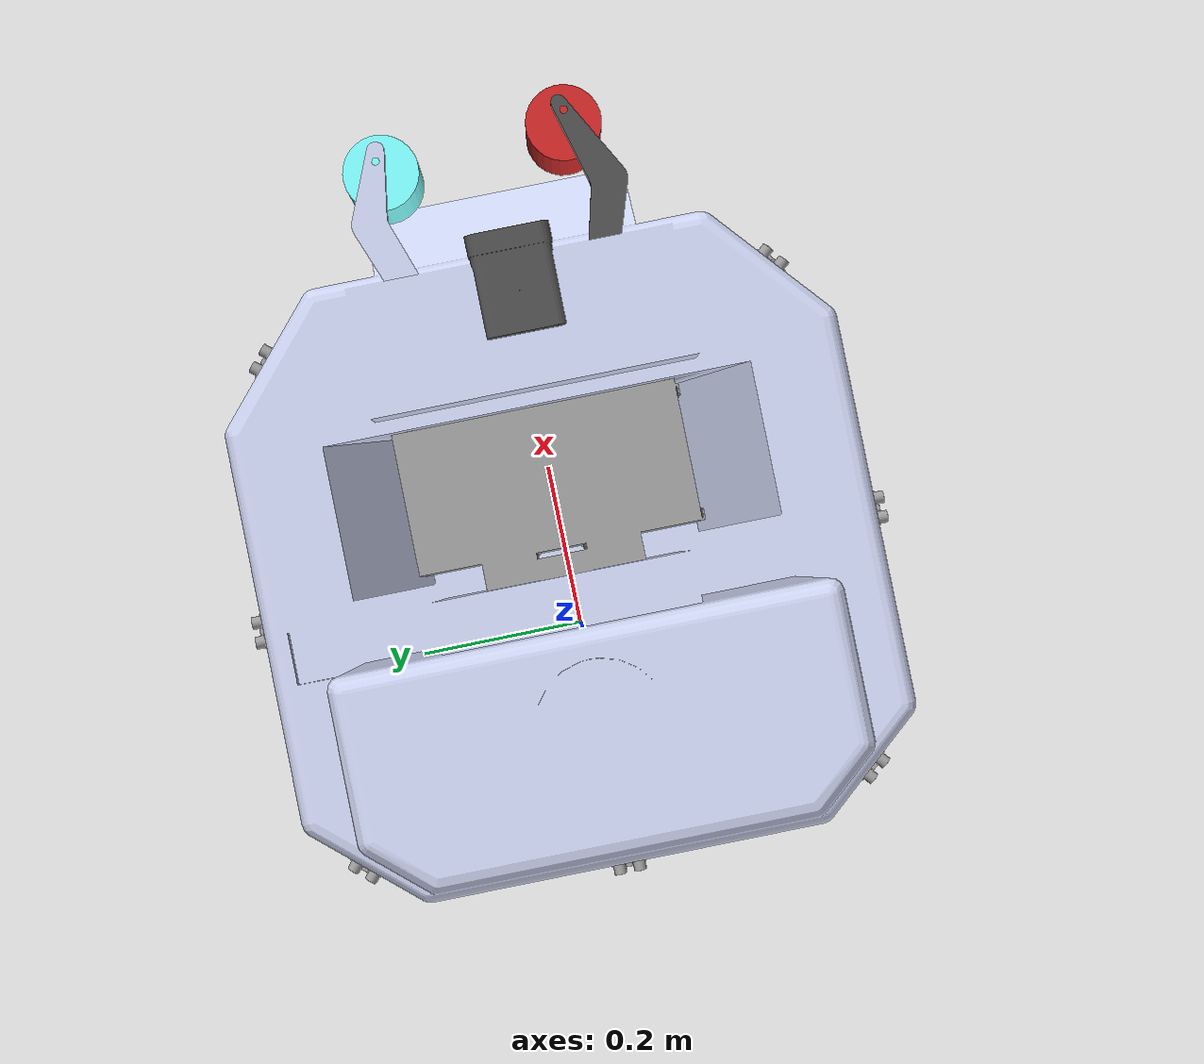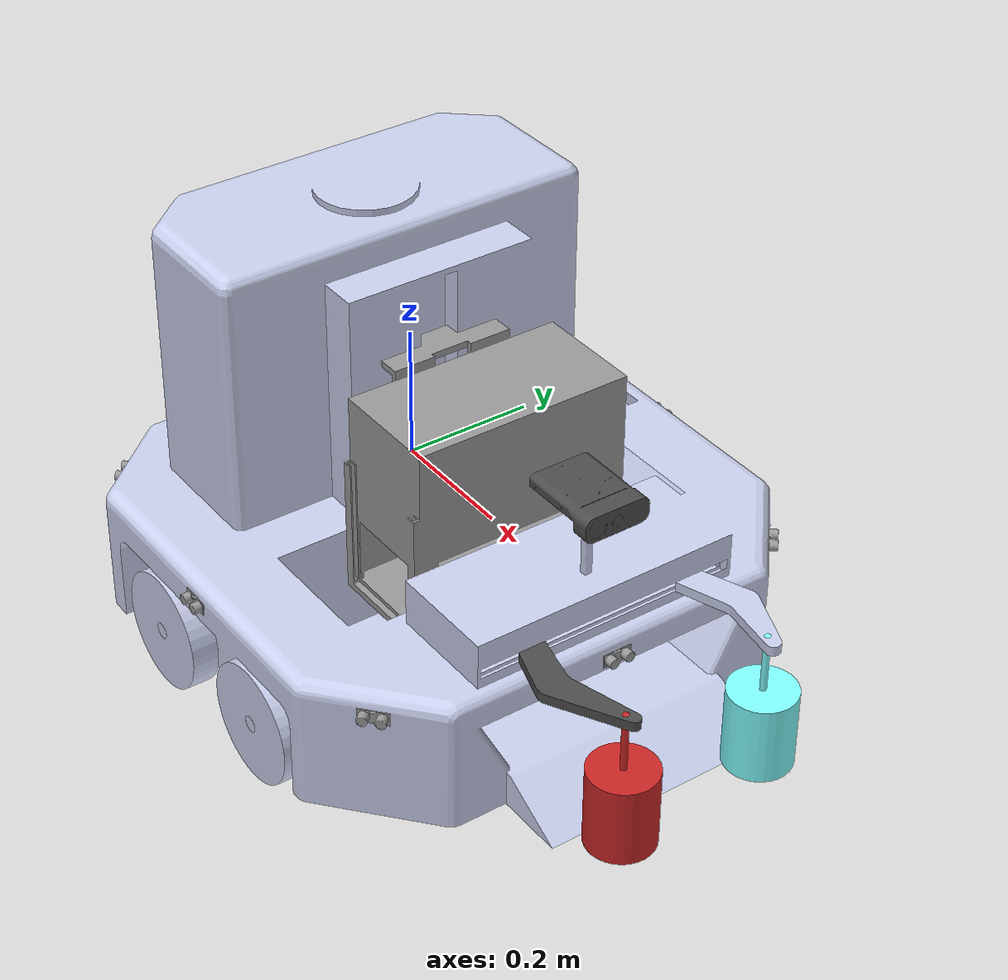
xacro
<?xml version="1.0"?>

<robot name="bot" xmlns:xacro="http://www.ros.org/wiki/xacro">
  <xacro:property name="M_PI" value="3.1415926535897931" />

  <!-- Included URDF Files -->
  <xacro:include filename="$(find washroom_cleaner)/urdf/bot_base.urdf.xacro" />

  <!-- Instantiate quadrotor_base_macro once (has no parameters atm) -->
  <xacro:bot_base/>

  <!-- Forward facing camera -->
  <xacro:include filename="$(find washroom_cleaner)/urdf/kinect.urdf.xacro" />
  <xacro:kinect name="kinect" parent="base_link" frame_name="base_link" update_rate="10" res_x="320" res_y="240" image_format="R8G8B8" hfov="90">
    <origin xyz="0.45675 -0.0051142 0.16966" rpy="0 0 0"/>
  </xacro:kinect>

  <!-- Lidar -->
  <xacro:include filename="$(find washroom_cleaner)/urdf/distance_sensor.urdf.xacro" />
  <xacro:distance_sensor name="dist_N" parent="base_link" ros_topic="scan" frame_name="base_link" update_rate="40" ray_count="10" min_angle="-2.5" max_angle="2.5" min_range="0.05" max_range="5" noise="true">
    <origin xyz="0.067877 0.39974 -0.05186" rpy="${M_PI} 0 ${M_PI/2}"/>
  </xacro:distance_sensor>

  <xacro:distance_sensor name="dist_NW" parent="base_link" ros_topic="scan" frame_name="base_link" update_rate="40" ray_count="10" min_angle="-2.5" max_angle="2.5" min_range="0.05" max_range="5" noise="true">
    <origin xyz="0.40623 0.33093 -0.05186" rpy="${M_PI} 0 ${2.4267 - M_PI/2}"/>
  </xacro:distance_sensor>

  <xacro:distance_sensor name="dist_W" parent="base_link" ros_topic="scan" frame_name="base_link" update_rate="40" ray_count="10" min_angle="-2.5" max_angle="2.5" min_range="0.05" max_range="5" noise="true">
    <origin xyz="0.48675 -0.00026 -0.05186" rpy="${M_PI} 0 0"/>
  </xacro:distance_sensor>

  <xacro:distance_sensor name="dist_SW" parent="base_link" ros_topic="scan" frame_name="base_link" update_rate="40" ray_count="10" min_angle="-2.5" max_angle="2.5" min_range="0.05" max_range="5" noise="true">
    <origin xyz="-0.253597943806856 0.329767311841684 -0.05186" rpy="${M_PI} 0 ${-2.28564794445059 - M_PI/2}"/>
  </xacro:distance_sensor>

  <xacro:distance_sensor name="dist_S" parent="base_link" ros_topic="scan" frame_name="base_link" update_rate="40" ray_count="10" min_angle="-2.5" max_angle="2.5" min_range="0.05" max_range="5" noise="true">
    <origin xyz="-0.31325 -0.00026 -0.05186" rpy="${M_PI} 0 ${M_PI}"/>
  </xacro:distance_sensor>

  <xacro:distance_sensor name="dist_SE" parent="base_link" ros_topic="scan" frame_name="base_link" update_rate="40" ray_count="10" min_angle="-2.5" max_angle="2.5" min_range="0.05" max_range="5" noise="true">
    <origin xyz="-0.253597943806856 -0.330287311841684 -0.05186" rpy="${M_PI} 0 ${-0.855944709139206 - M_PI/2}"/>
  </xacro:distance_sensor>

  <xacro:distance_sensor name="dist_E" parent="base_link" ros_topic="scan" frame_name="base_link" update_rate="40" ray_count="10" min_angle="-2.5" max_angle="2.5" min_range="0.05" max_range="5" noise="true">
    <origin xyz="0.0678770423730095 -0.40026 -0.05186" rpy="${M_PI} 0 ${-M_PI/2}"/>
  </xacro:distance_sensor>

  <xacro:distance_sensor name="dist_NE" parent="base_link" ros_topic="scan" frame_name="base_link" update_rate="40" ray_count="10" min_angle="-2.5" max_angle="2.5" min_range="0.05" max_range="5" noise="true">
    <origin xyz="0.40623 -0.33145 -0.05186" rpy="${M_PI} 0 ${0.71485 - M_PI/2}"/>
  </xacro:distance_sensor>

</robot>

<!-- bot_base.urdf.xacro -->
<robot name="bot" xmlns:xacro="http://www.ros.org/wiki/xacro">

  <xacro:property name="pi" value="3.1415926535897931" />

  <!-- Main link -->
  <xacro:macro name="bot_base">
    <gazebo reference="base_link">
      <material>Gazebo/LightGray</material>
    </gazebo>
    <gazebo reference="left_front_wheel">
      <material>Gazebo/DarkGray</material>
    </gazebo>
    <gazebo reference="left_rear_wheel">
      <material>Gazebo/DarkGray</material>
    </gazebo>
    <gazebo reference="right_front_wheel">
      <material>Gazebo/DarkGray</material>
    </gazebo>
    <gazebo reference="right_rear_wheel">
      <material>Gazebo/DarkGray</material>
    </gazebo>
    <gazebo reference="brush">
      <material>Gazebo/DarkGray</material>
    </gazebo>
    <gazebo reference="dustbin">
      <material>Gazebo/Gray</material>
    </gazebo>
    <gazebo reference="claw_left">
      <material>Gazebo/DarkGray</material>
    </gazebo>
    <gazebo reference="claw_right">
      <material>Gazebo/DarkGray</material>
    </gazebo>
    <gazebo reference="drum_left">
      <material>Gazebo/Red</material>
    </gazebo>
    <gazebo reference="drum_right">
      <material>Gazebo/Red</material>
    </gazebo>

    <link name="base_link">
      <inertial>
        <origin
          xyz="-0.014481 -0.00042641 0.0075303"
          rpy="0 0 0" />
        <mass
          value="50" />
        <inertia
          ixx="7.1653"
          ixy="-0.0082541"
          ixz="0.15785"
          iyy="6.184"
          iyz="-0.0017661"
          izz="11.053" />
      </inertial>
      <visual>
        <origin
          xyz="0 0 0"
          rpy="0 0 0" />
        <geometry>
          <mesh
            filename="package://washroom_cleaner/meshes/base_link_bot.STL" />
        </geometry>
        <material
          name="">
          <color
            rgba="0.79216 0.81961 0.93333 1" />
        </material>
      </visual>
      <collision>
        <origin
          xyz="0 0 0"
          rpy="0 0 0" />
        <geometry>
          <mesh
            filename="package://washroom_cleaner/meshes/base_link_bot.STL" />
        </geometry>
      </collision>
    </link>
    <link name="left_front_wheel">
      <inertial>
        <origin
          xyz="0.02 -6.9389E-18 -2.7756E-17"
          rpy="0 0 0" />
        <mass
          value="0.99824" />
        <inertia
          ixx="0.0041209"
          ixy="2.5714E-36"
          ixz="-1.1888E-35"
          iyy="0.0021935"
          iyz="2.8905E-36"
          izz="0.0021935" />
      </inertial>
      <visual>
        <origin
          xyz="0 0 0"
          rpy="0 0 0" />
        <geometry>
          <mesh
            filename="package://washroom_cleaner/meshes/left_front_wheel_bot.STL" />
        </geometry>
        <material
          name="">
          <color
            rgba="0.79216 0.81961 0.93333 1" />
        </material>
      </visual>
      <collision>
        <origin
          xyz="0 0 0"
          rpy="0 0 0" />
        <geometry>
          <mesh
            filename="package://washroom_cleaner/meshes/left_front_wheel_bot.STL" />
        </geometry>
      </collision>
    </link>
    <joint name="left_front_wheel_joint" type="continuous">
      <origin
        xyz="0.19104 0.35474 -0.18656"
        rpy="1.5708 0 1.5708" />
      <parent
        link="base_link" />
      <child
        link="left_front_wheel" />
      <axis
        xyz="1 0 0" />
    </joint>
    <link name="left_rear_wheel">
      <inertial>
        <origin
          xyz="0.02 6.9389E-18 2.7756E-17"
          rpy="0 0 0" />
        <mass
          value="0.99824" />
        <inertia
          ixx="0.0041209"
          ixy="-1.1388E-35"
          ixz="-1.1888E-35"
          iyy="0.0021935"
          iyz="-2.8671E-36"
          izz="0.0021935" />
      </inertial>
      <visual>
        <origin
          xyz="0 0 0"
          rpy="0 0 0" />
        <geometry>
          <mesh
            filename="package://washroom_cleaner/meshes/left_rear_wheel_bot.STL" />
        </geometry>
        <material
          name="">
          <color
            rgba="0.79216 0.81961 0.93333 1" />
        </material>
      </visual>
      <collision>
        <origin
          xyz="0 0 0"
          rpy="0 0 0" />
        <geometry>
          <mesh
            filename="package://washroom_cleaner/meshes/left_rear_wheel_bot.STL" />
        </geometry>
      </collision>
    </link>
    <joint name="left_rear_wheel_joint" type="continuous">
      <origin
        xyz="-0.053956 0.35474 -0.18656"
        rpy="1.5708 0 1.5708" />
      <parent
        link="base_link" />
      <child
        link="left_rear_wheel" />
      <axis
        xyz="1 0 0" />
    </joint>
    <link name="right_rear_wheel">
      <inertial>
        <origin
          xyz="-0.02 2.0817E-17 1.3878E-16"
          rpy="0 0 0" />
        <mass
          value="0.99824" />
        <inertia
          ixx="0.0041209"
          ixy="2.3082E-21"
          ixz="-3.6632E-20"
          iyy="0.0021935"
          iyz="-2.7105E-20"
          izz="0.0021935" />
      </inertial>
      <visual>
        <origin
          xyz="0 0 0"
          rpy="0 0 0" />
        <geometry>
          <mesh
            filename="package://washroom_cleaner/meshes/right_rear_wheel_bot.STL" />
        </geometry>
        <material
          name="">
          <color
            rgba="0.79216 0.81961 0.93333 1" />
        </material>
      </visual>
      <collision>
        <origin
          xyz="0 0 0"
          rpy="0 0 0" />
        <geometry>
          <mesh
            filename="package://washroom_cleaner/meshes/right_rear_wheel_bot.STL" />
        </geometry>
      </collision>
    </link>
    <joint name="right_rear_wheel_joint" type="continuous">
      <origin
        xyz="-0.053956 -0.35526 -0.18656"
        rpy="1.5059 0 1.5708" />
      <parent
        link="base_link" />
      <child
        link="right_rear_wheel" />
      <axis
        xyz="1 0 0" />
    </joint>
    <link name="right_front_wheel">
      <inertial>
        <origin
          xyz="-0.02 3.4694E-17 2.498E-16"
          rpy="0 0 0" />
        <mass
          value="0.99824" />
        <inertia
          ixx="0.0041209"
          ixy="-8.3515E-23"
          ixz="1.2599E-21"
          iyy="0.0021935"
          iyz="-1.6263E-19"
          izz="0.0021935" />
      </inertial>
      <visual>
        <origin
          xyz="0 0 0"
          rpy="0 0 0" />
        <geometry>
          <mesh
            filename="package://washroom_cleaner/meshes/right_front_wheel_bot.STL" />
        </geometry>
        <material
          name="">
          <color
            rgba="0.79216 0.81961 0.93333 1" />
        </material>
      </visual>
      <collision>
        <origin
          xyz="0 0 0"
          rpy="0 0 0" />
        <geometry>
          <mesh
            filename="package://washroom_cleaner/meshes/right_front_wheel_bot.STL" />
        </geometry>
      </collision>
    </link>
    <joint name="right_front_wheel_joint" type="continuous">
      <origin
        xyz="0.19104 -0.35526 -0.18656"
        rpy="1.041 0 1.5708" />
      <parent
        link="base_link" />
      <child
        link="right_front_wheel" />
      <axis
        xyz="1 0 0" />
    </joint>
    <link name="brush">
      <inertial>
        <origin
          xyz="2.7756E-17 -0.025 0"
          rpy="0 0 0" />
        <mass
          value="1.4726" />
        <inertia
          ixx="0.0042184"
          ixy="-8.0631E-36"
          ixz="-2.3434E-37"
          iyy="0.0078233"
          iyz="-1.7072E-35"
          izz="0.0042184" />
      </inertial>
      <visual>
        <origin
          xyz="0 0 0"
          rpy="0 0 0" />
        <geometry>
          <mesh
            filename="package://washroom_cleaner/meshes/brush_bot.STL" />
        </geometry>
        <material
          name="">
          <color
            rgba="0.79216 0.81961 0.93333 1" />
        </material>
      </visual>
      <collision>
        <origin
          xyz="0 0 0"
          rpy="0 0 0" />
        <geometry>
          <mesh
            filename="package://washroom_cleaner/meshes/brush_bot.STL" />
        </geometry>
      </collision>
    </link>
    <joint name="brush_joint" type="continuous">
      <origin
        xyz="-0.075411 0.0095022 -0.20156"
        rpy="1.5708 0 1.5708" />
      <parent
        link="base_link" />
      <child
        link="brush" />
      <axis
        xyz="0 1 0" />
    </joint>

    <link name="dustbin">
      <inertial>
        <origin xyz="0.00043559 0.046483 -0.014187" rpy="0 0 0" />
        <mass value="3.3913" />
        <inertia ixx="0.050849" ixy="0.0007766" ixz="3.7083E-06" iyy="0.053672" iyz="0.0030717" izz="0.078293" />
      </inertial>
      <visual>
        <origin xyz="0 0 0" rpy="0 0 0" />
        <geometry>
          <mesh filename="package://washroom_cleaner/meshes/dustbin_bot.STL" />
        </geometry>
      </visual>
      <collision>
        <origin xyz="0 0 0" rpy="0 0 0" />
        <geometry>
          <mesh filename="package://washroom_cleaner/meshes/dustbin_bot.STL" />
        </geometry>
      </collision>
    </link>
    <joint name="dustbin_joint" type="prismatic">
      <origin xyz="0.18105 0.0059196 0" rpy="1.5708 0 1.5708" />
      <parent link="base_link" />
      <child link="dustbin" />
      <axis xyz="0 1 0" />
      <limit lower="0" upper="0.1" effort="0.01" velocity="0.1" />
    </joint>

    <link name="claw_right">
      <inertial>
        <origin xyz="-0.039152 0.0075 0.084902" rpy="0 0 0" />
        <mass value="0.11123" />
        <inertia ixx="0.00028997" ixy="-7.7846E-22" ixz="-3.8528E-05" iyy="0.00031833" iyz="-4.6594E-22" izz="3.2529E-05" />
      </inertial>
      <visual>
        <origin xyz="0 0 0" rpy="0 0 0" />
        <geometry>
          <mesh filename="package://washroom_cleaner/meshes/claw_right_bot.STL" />
        </geometry>
      </visual>
      <collision>
        <origin xyz="0 0 0" rpy="0 0 0" />
        <geometry>
          <mesh filename="package://washroom_cleaner/meshes/claw_right_bot.STL" />
        </geometry>
      </collision>
    </link>
    <joint name="claw_right_joint" type="fixed">
      <origin xyz="0.46675 -0.092741 -0.00656" rpy="1.5708 0 1.5708" />
      <parent link="base_link" />
      <child link="claw_right" />
      <axis xyz="1 0 0" />
      <limit lower="0" upper="0.05" effort="0.1" velocity="0.1" />
    </joint>

    <link name="drum_right">
      <inertial>
        <origin xyz="1.1102E-16 -0.13422 -1.1102E-16" rpy="0 0 0" />
        <mass value="0.94943" />
        <inertia ixx="0.0018019" ixy="5.5041E-20" ixz="0" iyy="0.0011779" iyz="1.3414E-19" izz="0.0018019" />
      </inertial>
      <visual>
        <origin xyz="0 0 0" rpy="0 0 0" />
        <geometry>
          <mesh filename="package://washroom_cleaner/meshes/drum_right_bot.STL" />
        </geometry>
      </visual>
      <collision>
        <origin xyz="0 0 0" rpy="0 0 0" />
        <geometry>
          <mesh filename="package://washroom_cleaner/meshes/drum_right_bot.STL" />
        </geometry>
      </collision>
    </link>
    <joint name="drum_right_joint" type="continuous">
      <origin xyz="-0.014509 0 0.17408" rpy="3.1416 -0.70288 3.1416" />
      <parent link="claw_right" />
      <child link="drum_right" />
      <axis xyz="0 1 0" />
    </joint>

    <link name="claw_left">
      <inertial>
        <origin
          xyz="0.038257 0.0075 0.079083"
          rpy="0 0 0" />
        <mass
          value="0.10469" />
        <inertia
          ixx="0.00024535"
          ixy="9.5759E-22"
          ixz="-4.8347E-06"
          iyy="0.00026571"
          iyz="-2.0581E-21"
          izz="2.4286E-05" />
      </inertial>
      <visual>
        <origin
          xyz="0 0 0"
          rpy="0 0 0" />
        <geometry>
          <mesh
            filename="package://washroom_cleaner/meshes/claw_left_bot.STL" />
        </geometry>
        <material
          name="">
          <color
            rgba="0.79216 0.81961 0.93333 1" />
        </material>
      </visual>
      <collision>
        <origin
          xyz="0 0 0"
          rpy="0 0 0" />
        <geometry>
          <mesh
            filename="package://washroom_cleaner/meshes/claw_left_bot.STL" />
        </geometry>
      </collision>
    </link>
    <joint name="claw_left_joint" type="fixed">
      <origin xyz="0.46675 0.11148 -0.00656" rpy="1.5708 0 1.5708" />
      <parent link="base_link" />
      <child link="claw_left" />
      <axis xyz="1 0 0" />
      <limit lower="-0.05" upper="0" effort="0.1" velocity="0.1" />
    </joint>

    <link name="drum_left">
      <inertial>
        <origin
          xyz="2.7756E-17 -0.13422 0"
          rpy="0 0 0" />
        <mass
          value="0.94943" />
        <inertia
          ixx="0.0018019"
          ixy="-4.7822E-36"
          ixz="-1.7244E-36"
          iyy="0.0011779"
          iyz="4.4771E-21"
          izz="0.0018019" />
      </inertial>
      <visual>
        <origin
          xyz="0 0 0"
          rpy="0 0 0" />
        <geometry>
          <mesh
            filename="package://washroom_cleaner/meshes/drum_left_bot.STL" />
        </geometry>
        <material
          name="">
          <color
            rgba="0.50196 1 1 1" />
        </material>
      </visual>
      <collision>
        <origin
          xyz="0 0 0"
          rpy="0 0 0" />
        <geometry>
          <mesh
            filename="package://washroom_cleaner/meshes/drum_left_bot.STL" />
        </geometry>
      </collision>
    </link>
    <joint name="drum_left_joint" type="continuous">
      <origin
        xyz="0.02761 0 0.15624"
        rpy="0 0 0" />
      <parent
        link="claw_left" />
      <child
        link="drum_left" />
      <axis
        xyz="0 1 0" />
    </joint>

    <gazebo>
      <plugin name="skid_steer_drive_controller" filename="libgazebo_ros_skid_steer_drive.so">
        <updateRate>100.0</updateRate>
        <robotNamespace>/</robotNamespace>
        <leftFrontJoint>left_front_wheel_joint</leftFrontJoint>
        <rightFrontJoint>right_front_wheel_joint</rightFrontJoint>
        <leftRearJoint>left_rear_wheel_joint</leftRearJoint>
        <rightRearJoint>right_rear_wheel_joint</rightRearJoint>
        <wheelSeparation>0.79</wheelSeparation>
        <wheelDiameter>0.18</wheelDiameter>
        <robotBaseFrame>base_link</robotBaseFrame>
        <torque>5</torque>
        <topicName>cmd_vel</topicName>
        <broadcastTF>false</broadcastTF>
     </plugin>
    </gazebo>
  </xacro:macro>
</robot>

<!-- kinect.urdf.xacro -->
<robot xmlns:xacro="http://www.ros.org/wiki/xacro">
    <xacro:property name="M_PI" value="3.1415926535897931" />

    <xacro:macro name="kinect_model" params="name parent *origin">
      <joint name="${name}_joint" type="fixed">
        <xacro:insert_block name="origin" />
        <parent link="${parent}"/>
        <child link="${name}_link"/>
      </joint>

      <gazebo reference="${name}_link">
        <material>Gazebo/DarkGray</material>
      </gazebo>

      <link name="${name}_link">
        <inertial>
          <origin xyz="2.059E-06 0.0044262 -0.029665" rpy="0 0 0" />
          <mass value="0.31266" />
          <inertia ixx="0.00047023" ixy="4.3189E-09" ixz="-5.7714E-08" iyy="0.000686" iyz="2.7696E-05" izz="0.0002636" />
        </inertial>
        <visual>
          <origin xyz="0 0 0" rpy="${M_PI/2} 0 ${M_PI/2}" />
          <geometry>
            <mesh filename="package://washroom_cleaner/meshes/camera_bot.STL" />
          </geometry>
        </visual>
        <collision>
          <origin xyz="0 0 0" rpy="${M_PI/2} 0 ${M_PI/2}" />
          <geometry>
            <mesh filename="package://washroom_cleaner/meshes/camera_bot.STL" />
          </geometry>
        </collision>
      </link>
    </xacro:macro>

    <xacro:macro name="kinect" params="name parent *origin frame_name update_rate res_x res_y image_format hfov">
      <xacro:kinect_model name="${name}" parent="${parent}">
        <xacro:insert_block name="origin" />
      </xacro:kinect_model>

      <gazebo reference="${name}_link">
        <sensor name="${name}" type="depth">
          <update_rate>${update_rate}</update_rate>
          <camera>
            <horizontal_fov>${hfov * M_PI/180.0}</horizontal_fov>
            <image>
              <format>${image_format}</format>
              <width>${res_x}</width>
              <height>${res_y}</height>
            </image>
            <clip>
              <near>0.05</near>
              <far>3</far>
            </clip>
          </camera>
          <plugin name="${name}_controller" filename="libgazebo_ros_openni_kinect.so">
            <baseline>0.2</baseline>
            <alwaysOn>true</alwaysOn>
            <updateRate>1.0</updateRate>
            <cameraName>${name}_ir</cameraName>
            <imageTopicName>/${name}/color/image_raw</imageTopicName>
            <cameraInfoTopicName>/${name}/color/camera_info</cameraInfoTopicName>
            <depthImageTopicName>/${name}/depth/image_raw</depthImageTopicName>
            <depthImageInfoTopicName>/${name}/depth/camera_info</depthImageInfoTopicName>
            <pointCloudTopicName>/${name}/depth/points</pointCloudTopicName>
            <frameName>${frame_name}</frameName>
            <pointCloudCutoff>0.5</pointCloudCutoff>
            <pointCloudCutoffMax>3.0</pointCloudCutoffMax>
            <distortionK1>0.00000001</distortionK1>
            <distortionK2>0.00000001</distortionK2>
            <distortionK3>0.00000001</distortionK3>
            <distortionT1>0.00000001</distortionT1>
            <distortionT2>0.00000001</distortionT2>
            <CxPrime>0</CxPrime>
            <Cx>0</Cx>
            <Cy>0</Cy>
            <focalLength>0</focalLength>
            <hackBaseline>0</hackBaseline>
          </plugin>
        </sensor>
      </gazebo>
    </xacro:macro>
</robot>

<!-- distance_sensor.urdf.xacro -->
<robot xmlns:xacro="http://www.ros.org/wiki/xacro">
    <xacro:property name="M_PI" value="3.1415926535897931" />

    <xacro:macro name="distance_sensor_model" params="name parent *origin">
      <joint name="${name}_joint" type="fixed">
        <xacro:insert_block name="origin" />
        <parent link="${parent}"/>
        <child link="${name}_link"/>
      </joint>

      <gazebo reference="${name}_link">
        <material>Gazebo/Gray</material>
      </gazebo>

      <link name="${name}_link">
        <inertial>
          <origin xyz="-4.3073E-05 0.0036756 -6.9914E-05" rpy="0 0 0" />
          <mass value="0.0038351" />
          <inertia ixx="1.5937E-07" ixy="-8.5425E-10" ixz="-3.4091E-09" iyy="7.6875E-07" iyz="2.6506E-09" izz="7.2622E-07" />
        </inertial>
        <visual>
          <origin xyz="0 0 0" rpy="0 0 ${-M_PI/2}" />
          <geometry>
            <mesh filename="package://washroom_cleaner/meshes/distance_sensor_bot.STL" />
          </geometry>
        </visual>
        <collision>
          <origin xyz="0 0 0" rpy="0 0 ${-M_PI/2}" />
          <geometry>
            <mesh filename="package://washroom_cleaner/meshes/distance_sensor_bot.STL" />
          </geometry>
        </collision>
      </link>
    </xacro:macro>

    <xacro:macro name="distance_sensor" params="name parent *origin ros_topic frame_name update_rate ray_count min_angle max_angle min_range max_range noise">
      <xacro:distance_sensor_model name="${name}" parent="${parent}">
        <xacro:insert_block name="origin" />
      </xacro:distance_sensor_model>

      <gazebo reference="${name}_link">
        <sensor type="ray" name="${name}">
          <always_on>true</always_on>
          <update_rate>${update_rate}</update_rate>
          <pose>0 0 0 0 0 0</pose>
          <visualize>1</visualize>
          <ray>
            <scan>
              <horizontal>
                <samples>${ray_count}</samples>
                <resolution>1</resolution>
                <min_angle>${min_angle * M_PI/180}</min_angle>
                <max_angle>${max_angle * M_PI/180}</max_angle>
              </horizontal>
            </scan>
            <range>
              <min>${min_range}</min>
              <max>${max_range}</max>
              <resolution>0.01</resolution>
            </range>
            <xacro:if value="${noise == 'true'}">
              <noise>
                <type>gaussian</type>
                <mean>0.0</mean>
                <stddev>0.004</stddev>
              </noise>
            </xacro:if>
          </ray>
          <plugin name="gazebo_ros_${name}_controller" filename="libgazebo_ros_laser.so">
            <topicName>${ros_topic}</topicName>
            <frameName>${frame_name}</frameName>
          </plugin>
        </sensor>
      </gazebo>
    </xacro:macro>
</robot>
